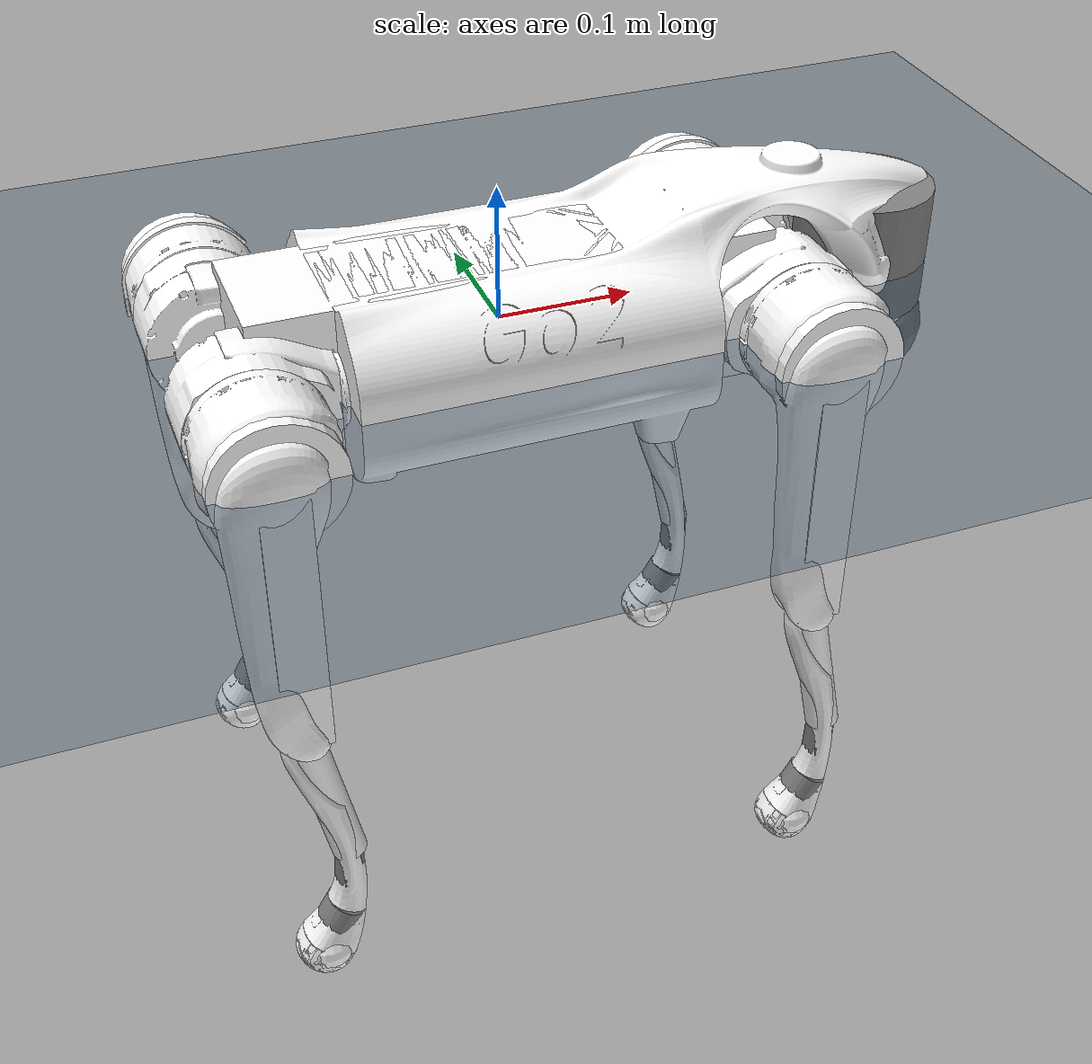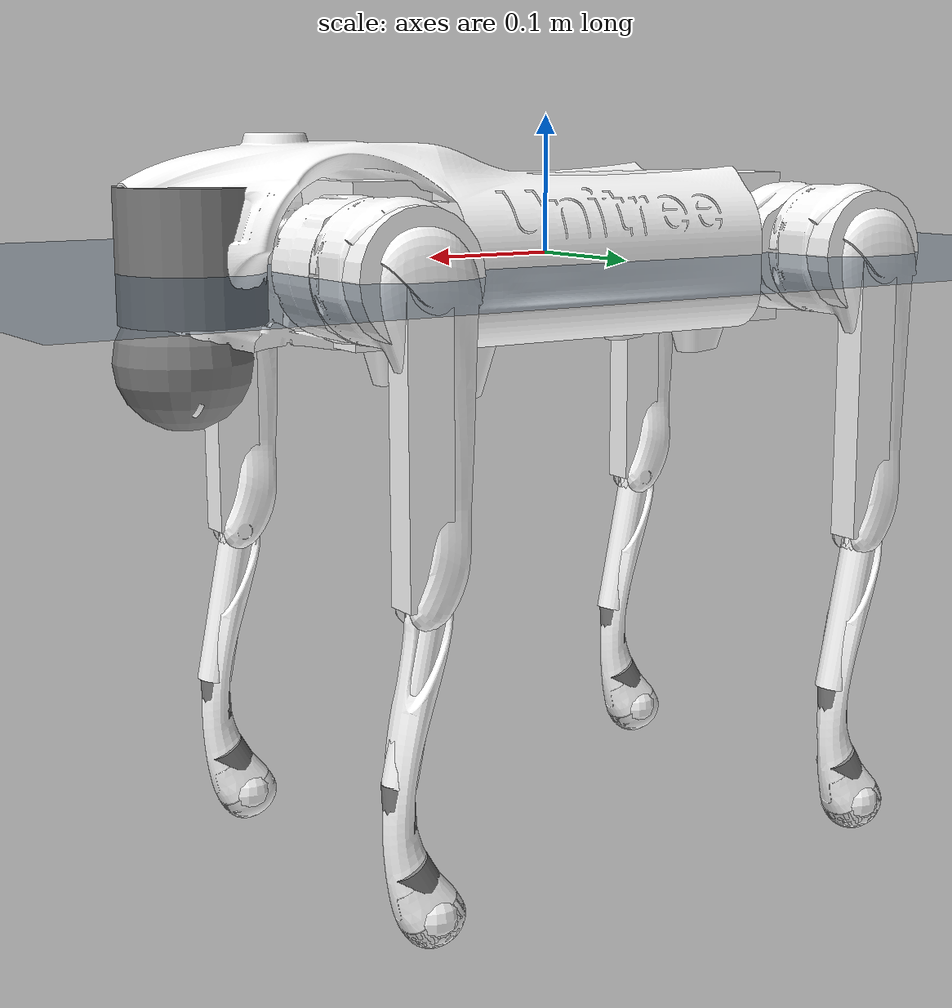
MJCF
<mujoco model="go2_description">
  <compiler angle="radian" meshdir="meshes"/>

  <option timestep='0.002' iterations='50' solver='PGS' gravity='0 0 -9.81'/>

  <default>
    <default class="go2">
      <geom friction="0.4" margin="0.001" condim="1"/>
      <joint axis="0 1 0" damping="0.1" armature="0.01" frictionloss="0.2"/>
      <motor ctrlrange="-23.7 23.7"/>
      <default class="abduction">
        <joint axis="1 0 0" range="-1.0472 1.0472"/>
      </default>
      <default class="hip">
        <default class="front_hip">
          <joint range="-1.5708 3.4907"/>
        </default>
        <default class="back_hip">
          <joint range="-0.5236 4.5379"/>
        </default>
      </default>
      <default class="knee">
        <joint range="-2.7227 -0.83776"/>
        <motor ctrlrange="-45.43 45.43"/>
      </default>
      <default class="visual">
        <geom type="mesh" contype="0" conaffinity="0" group="2"/>
      </default>
      <default class="collision">
        <geom group="3"/>
        <default class="foot">
          <geom size="0.022" pos="-0.002 0 -0.213" priority="1" condim="6"
            friction="1.0 0.02 0.01"/>
        </default>
      </default>
    </default>
  </default>

  <asset>
    <mesh name="base" file="base.stl"/>
    <mesh name="hip" file="hip.stl"/>
    <mesh name="thigh" file="thigh.stl"/>
    <mesh name="calf" file="calf.stl"/>
    <mesh name="foot" file="foot.stl"/>
    <mesh name="thigh_mirror" file="thigh_mirror.stl"/>
    <mesh name="calf_mirror" file="calf_mirror.stl"/>

    <texture type="skybox" builtin="gradient" rgb1="0.3 0.5 0.7" rgb2="0 0 0" width="512" height="3072"/>
    <texture type="2d" name="groundplane" builtin="checker" mark="edge" rgb1="0.2 0.3 0.4" rgb2="0.1 0.2 0.3"
      markrgb="0.8 0.8 0.8" width="300" height="300"/>
    <material name="groundplane" texture="groundplane" texuniform="true" texrepeat="5 5" reflectance="0.2"/>
  </asset>

  <worldbody>
    <light pos="0 0 1.5" dir="0 0 -1" directional="true"/>
    <geom name="floor" size="0 0 0.05" type="plane" material="groundplane"/>

    <body name="base">
      <inertial pos="0.0201531 0 -0.00510896" quat="-0.000484971 0.713304 -0.00161969 0.700853" mass="7.279" diaginertia="0.112836 0.103121 0.0257104"/>
      <joint name="floating_base_joint" type="free" limited="false" actuatorfrclimited="false"/>
      <geom type="mesh" contype="0" conaffinity="0" group="1" density="0" rgba="1 1 1 1" mesh="base"/>
      <geom size="0.1881 0.04675 0.057" type="box" rgba="1 1 1 1"/>
      <geom size="0.05 0.045" pos="0.285 0 0.01" type="cylinder"/>
      <geom size="0.047" pos="0.293 0 -0.06"/>
      <body name="Head_upper" pos="0.285 0 0.01">
        <inertial pos="0 0 0" mass="0.001" diaginertia="9.6e-06 9.6e-06 9.6e-06"/>
        <geom size="0.05 0.045" type="cylinder"/>
        <body name="Head_lower" pos="0.008 0 -0.07">
          <inertial pos="0 0 0" mass="0.001" diaginertia="9.6e-06 9.6e-06 9.6e-06"/>
          <geom size="0.047"/>
        </body>
      </body>
      <body name="FL_hip" pos="0.1934 0.0465 0">
        <inertial pos="-0.0047734 0.00169748 -9.28162e-05" quat="0.497642 0.500031 0.504424 0.497873" mass="0.767" diaginertia="0.000998153 0.000658288 0.000539972"/>
        <joint name="FL_hip_joint" pos="0 0 0" axis="1 0 0" range="-1.0472 1.0472" actuatorfrcrange="-23.7 23.7"/>
        <geom type="mesh" contype="0" conaffinity="0" group="1" density="0" rgba="1 1 1 1" mesh="hip"/>
        <geom size="0.046 0.02" pos="0 0.08 0" quat="0.707107 0.707107 0 0" type="cylinder" rgba="1 1 1 1"/>
        <body name="FL_thigh" pos="0 0.0955 0">
          <inertial pos="-0.00347178 -0.0230207 -0.0303549" quat="0.79622 0.0840989 -0.0248035 0.59862" mass="1.241" diaginertia="0.00615153 0.00600351 0.00094178"/>
          <joint name="FL_thigh_joint" pos="0 0 0" axis="0 1 0" range="-1.5708 3.4907" actuatorfrcrange="-23.7 23.7"/>
          <geom type="mesh" contype="0" conaffinity="0" group="1" density="0" rgba="1 1 1 1" mesh="thigh"/>
          <geom size="0.1065 0.01225 0.017" pos="0 0 -0.1065" quat="0.707107 0 0.707107 0" type="box" rgba="1 1 1 1"/>
          <body name="FL_calf" pos="0 0 -0.213">
            <inertial pos="0.00629595 -0.000622121 -0.141417" quat="0.710672 0.00154099 -0.00450087 0.703508" mass="0.241352" diaginertia="0.0014901 0.00146356 5.31397e-05"/>
            <joint name="FL_calf_joint" pos="0 0 0" axis="0 1 0" range="-2.7227 -0.83776" actuatorfrcrange="-45.43 45.43"/>
            <geom type="mesh" contype="0" conaffinity="0" group="1" density="0" rgba="1 1 1 1" mesh="calf"/>
            <geom size="0.012 0.06" pos="0.008 0 -0.06" quat="0.994493 0 -0.104807 0" type="cylinder" rgba="1 1 1 1"/>
            <geom size="0.011 0.0325" pos="0.02 0 -0.148" quat="0.999688 0 0.0249974 0" type="cylinder"/>
            <geom size="0.0155 0.015" pos="0.00801333 0 -0.18745" quat="0.965093 0 0.261909 0" type="cylinder"/>
            <body name="FL_foot" pos="0 0 -0.213">
              <inertial pos="0 0 0" mass="0.04" diaginertia="9.6e-06 9.6e-06 9.6e-06"/>
              <geom type="mesh" contype="0" conaffinity="0" group="1" density="0" rgba="1 1 1 1" mesh="foot"/>
              <geom size="0.022" pos="-0.002 0 0" rgba="1 1 1 1"/>
            </body>
          </body>
        </body>
      </body>
      <body name="FR_hip" pos="0.1934 -0.0465 0">
        <inertial pos="-0.0047734 -0.00169748 -9.28162e-05" quat="0.497873 0.504424 0.500031 0.497642" mass="0.767" diaginertia="0.000998153 0.000658288 0.000539972"/>
        <joint name="FR_hip_joint" pos="0 0 0" axis="1 0 0" range="-1.0472 1.0472" actuatorfrcrange="-23.7 23.7"/>
        <geom quat="4.63268e-05 1 0 0" type="mesh" contype="0" conaffinity="0" group="1" density="0" rgba="1 1 1 1" mesh="hip"/>
        <geom size="0.046 0.02" pos="0 -0.08 0" quat="0.707107 0.707107 0 0" type="cylinder" rgba="1 1 1 1"/>
        <body name="FR_thigh" pos="0 -0.0955 0">
          <inertial pos="-0.00347178 0.0230207 -0.0303549" quat="0.59862 -0.0248035 0.0840989 0.79622" mass="1.241" diaginertia="0.00615153 0.00600351 0.00094178"/>
          <joint name="FR_thigh_joint" pos="0 0 0" axis="0 1 0" range="-1.5708 3.4907" actuatorfrcrange="-23.7 23.7"/>
          <geom type="mesh" contype="0" conaffinity="0" group="1" density="0" rgba="1 1 1 1" mesh="thigh_mirror"/>
          <geom size="0.1065 0.01225 0.017" pos="0 0 -0.1065" quat="0.707107 0 0.707107 0" type="box" rgba="1 1 1 1"/>
          <body name="FR_calf" pos="0 0 -0.213">
            <inertial pos="0.00629595 0.000622121 -0.141417" quat="0.703508 -0.00450087 0.00154099 0.710672" mass="0.241352" diaginertia="0.0014901 0.00146356 5.31397e-05"/>
            <joint name="FR_calf_joint" pos="0 0 0" axis="0 1 0" range="-2.7227 -0.83776" actuatorfrcrange="-45.43 45.43"/>
            <geom type="mesh" contype="0" conaffinity="0" group="1" density="0" rgba="1 1 1 1" mesh="calf_mirror"/>
            <geom size="0.013 0.06" pos="0.01 0 -0.06" quat="0.995004 0 -0.0998334 0" type="cylinder" rgba="1 1 1 1"/>
            <geom size="0.011 0.0325" pos="0.02 0 -0.148" quat="0.999688 0 0.0249974 0" type="cylinder"/>
            <geom size="0.0155 0.015" pos="0.00801333 0 -0.18745" quat="0.965093 0 0.261909 0" type="cylinder"/>
            <body name="FR_foot" pos="0 0 -0.213">
              <inertial pos="0 0 0" mass="0.04" diaginertia="9.6e-06 9.6e-06 9.6e-06"/>
              <geom type="mesh" contype="0" conaffinity="0" group="1" density="0" rgba="1 1 1 1" mesh="foot"/>
              <geom size="0.022" pos="-0.002 0 0" rgba="1 1 1 1"/>
            </body>
          </body>
        </body>
      </body>
      <body name="RL_hip" pos="-0.1934 0.0465 0">
        <inertial pos="0.0047734 0.00169748 -9.28162e-05" quat="0.504424 0.497873 0.497642 0.500031" mass="0.767" diaginertia="0.000998153 0.000658288 0.000539972"/>
        <joint name="RL_hip_joint" pos="0 0 0" axis="1 0 0" range="-1.0472 1.0472" actuatorfrcrange="-23.7 23.7"/>
        <geom quat="4.63268e-05 0 1 0" type="mesh" contype="0" conaffinity="0" group="1" density="0" rgba="1 1 1 1" mesh="hip"/>
        <geom size="0.046 0.02" pos="0 0.08 0" quat="0.707107 0.707107 0 0" type="cylinder" rgba="1 1 1 1"/>
        <body name="RL_thigh" pos="0 0.0955 0">
          <inertial pos="-0.00347178 -0.0230207 -0.0303549" quat="0.79622 0.0840989 -0.0248035 0.59862" mass="1.241" diaginertia="0.00615153 0.00600351 0.00094178"/>
          <joint name="RL_thigh_joint" pos="0 0 0" axis="0 1 0" range="-0.5236 4.5379" actuatorfrcrange="-23.7 23.7"/>
          <geom type="mesh" contype="0" conaffinity="0" group="1" density="0" rgba="1 1 1 1" mesh="thigh"/>
          <geom size="0.1065 0.01225 0.017" pos="0 0 -0.1065" quat="0.707107 0 0.707107 0" type="box" rgba="1 1 1 1"/>
          <body name="RL_calf" pos="0 0 -0.213">
            <inertial pos="0.00629595 -0.000622121 -0.141417" quat="0.710672 0.00154099 -0.00450087 0.703508" mass="0.241352" diaginertia="0.0014901 0.00146356 5.31397e-05"/>
            <joint name="RL_calf_joint" pos="0 0 0" axis="0 1 0" range="-2.7227 -0.83776" actuatorfrcrange="-45.43 45.43"/>
            <geom type="mesh" contype="0" conaffinity="0" group="1" density="0" rgba="1 1 1 1" mesh="calf"/>
            <geom size="0.013 0.06" pos="0.01 0 -0.06" quat="0.995004 0 -0.0998334 0" type="cylinder" rgba="1 1 1 1"/>
            <geom size="0.011 0.0325" pos="0.02 0 -0.148" quat="0.999688 0 0.0249974 0" type="cylinder"/>
            <geom size="0.0155 0.015" pos="0.00801333 0 -0.18745" quat="0.965093 0 0.261909 0" type="cylinder"/>
            <body name="RL_foot" pos="0 0 -0.213">
              <inertial pos="0 0 0" mass="0.04" diaginertia="9.6e-06 9.6e-06 9.6e-06"/>
              <geom type="mesh" contype="0" conaffinity="0" group="1" density="0" rgba="1 1 1 1" mesh="foot"/>
              <geom size="0.022" pos="-0.002 0 0" rgba="1 1 1 1"/>
            </body>
          </body>
        </body>
      </body>
      <body name="RR_hip" pos="-0.1934 -0.0465 0">
        <inertial pos="0.0047734 -0.00169748 -9.28162e-05" quat="0.500031 0.497642 0.497873 0.504424" mass="0.767" diaginertia="0.000998153 0.000658288 0.000539972"/>
        <joint name="RR_hip_joint" pos="0 0 0" axis="1 0 0" range="-1.0472 1.0472" actuatorfrcrange="-23.7 23.7"/>
        <geom quat="2.14617e-09 4.63268e-05 4.63268e-05 -1" type="mesh" contype="0" conaffinity="0" group="1" density="0" rgba="1 1 1 1" mesh="hip"/>
        <geom size="0.046 0.02" pos="0 -0.08 0" quat="0.707107 0.707107 0 0" type="cylinder" rgba="1 1 1 1"/>
        <body name="RR_thigh" pos="0 -0.0955 0">
          <inertial pos="-0.00347178 0.0230207 -0.0303549" quat="0.59862 -0.0248035 0.0840989 0.79622" mass="1.241" diaginertia="0.00615153 0.00600351 0.00094178"/>
          <joint name="RR_thigh_joint" pos="0 0 0" axis="0 1 0" range="-0.5236 4.5379" actuatorfrcrange="-23.7 23.7"/>
          <geom type="mesh" contype="0" conaffinity="0" group="1" density="0" rgba="1 1 1 1" mesh="thigh_mirror"/>
          <geom size="0.1065 0.01225 0.017" pos="0 0 -0.1065" quat="0.707107 0 0.707107 0" type="box" rgba="1 1 1 1"/>
          <body name="RR_calf" pos="0 0 -0.213">
            <inertial pos="0.00629595 0.000622121 -0.141417" quat="0.703508 -0.00450087 0.00154099 0.710672" mass="0.241352" diaginertia="0.0014901 0.00146356 5.31397e-05"/>
            <joint name="RR_calf_joint" pos="0 0 0" axis="0 1 0" range="-2.7227 -0.83776" actuatorfrcrange="-45.43 45.43"/>
            <geom type="mesh" contype="0" conaffinity="0" group="1" density="0" rgba="1 1 1 1" mesh="calf_mirror"/>
            <geom size="0.013 0.06" pos="0.01 0 -0.06" quat="0.995004 0 -0.0998334 0" type="cylinder" rgba="1 1 1 1"/>
            <geom size="0.011 0.0325" pos="0.02 0 -0.148" quat="0.999688 0 0.0249974 0" type="cylinder"/>
            <geom size="0.0155 0.015" pos="0.00801333 0 -0.18745" quat="0.965093 0 0.261909 0" type="cylinder"/>
            <body name="RR_foot" pos="0 0 -0.213">
              <inertial pos="0 0 0" mass="0.04" diaginertia="9.6e-06 9.6e-06 9.6e-06"/>
              <geom type="mesh" contype="0" conaffinity="0" group="1" density="0" rgba="1 1 1 1" mesh="foot"/>
              <geom size="0.022" pos="-0.002 0 0" rgba="1 1 1 1"/>
            </body>
          </body>
        </body>
      </body>
    </body>
  </worldbody>

  <actuator>
    <motor class="abduction" name="FL_hip_joint" joint="FL_hip_joint" />
    <motor class="hip" name="FL_thigh_joint" joint="FL_thigh_joint" />
    <motor class="knee" name="FL_calf_joint" joint="FL_calf_joint" />
    <motor class="abduction" name="FR_hip_joint" joint="FR_hip_joint" />
    <motor class="hip" name="FR_thigh_joint" joint="FR_thigh_joint" />
    <motor class="knee" name="FR_calf_joint" joint="FR_calf_joint" />
    <motor class="abduction" name="RL_hip_joint" joint="RL_hip_joint" />
    <motor class="hip" name="RL_thigh_joint" joint="RL_thigh_joint" />
    <motor class="knee" name="RL_calf_joint" joint="RL_calf_joint" />
    <motor class="abduction" name="RR_hip_joint" joint="RR_hip_joint" />
    <motor class="hip" name="RR_thigh_joint" joint="RR_thigh_joint" />
    <motor class="knee" name="RR_calf_joint" joint="RR_calf_joint" />
  </actuator>
</mujoco>
